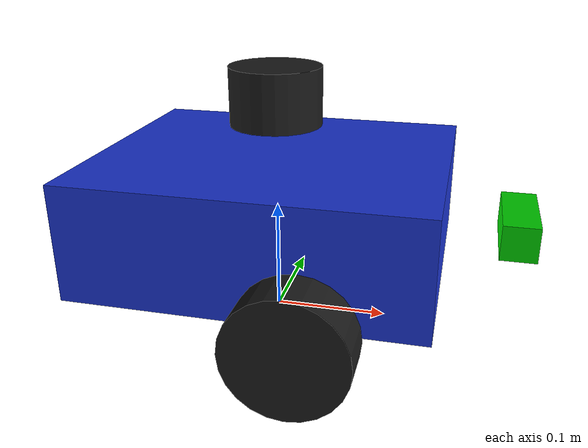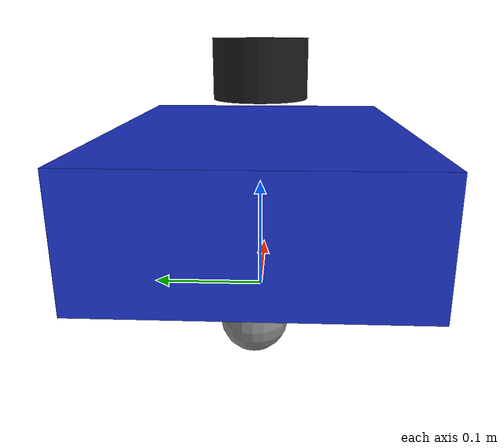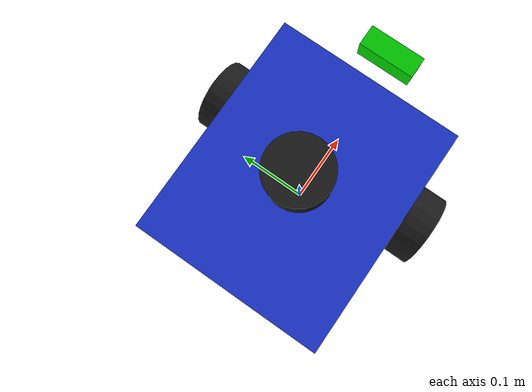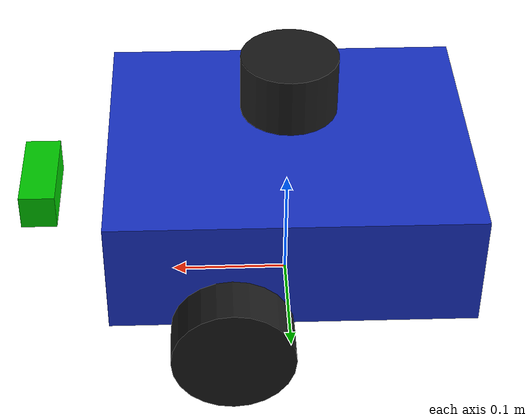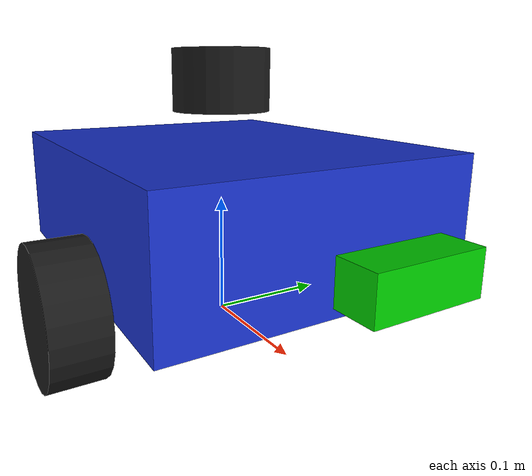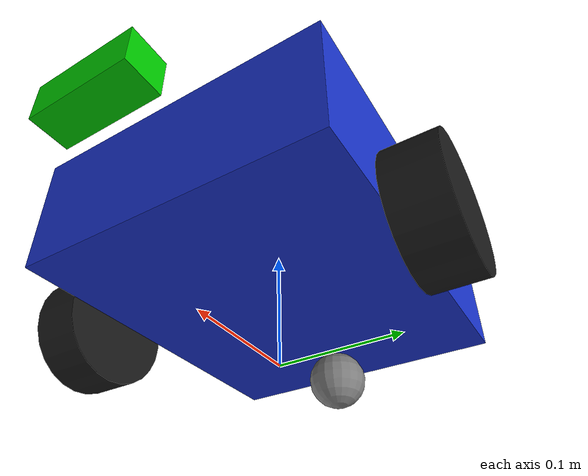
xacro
<?xml version="1.0"?>
<robot name="dif_bot" xmlns:xacro="http://www.ros.org/wiki/xacro">

    <!-- 1. Inclusión de Archivos Secundarios                     -->
    <xacro:include filename="inertial_macros.xacro"/>
    <xacro:include filename="sensors.xacro"/>

    <!-- 2. Propiedades Xacro (Dimensiones, Offsets y Radios)     -->
    <xacro:property name="base_length" value="0.30"/>
    <xacro:property name="base_width" value="0.25"/>
    <xacro:property name="base_height" value="0.10"/>
    <xacro:property name="wheel_radius" value="0.05"/>
    <xacro:property name="wheel_length" value="0.04"/>
    <xacro:property name="wheel_offset_x" value="0.05"/>
    <xacro:property name="wheel_offset_y" value="0.15"/>
    <xacro:property name="wheel_offset_z" value="0.0"/>
    <xacro:property name="caster_radius" value="0.025"/>
    <xacro:property name="caster_offset_x" value="-0.10"/>
    <xacro:property name="caster_offset_z" value="-0.025"/>

    <!-- Materiales de Visualización -->
    <material name="blue">
        <color rgba="0.1 0.2 0.8 1.0"/>
    </material>
    <material name="black">
        <color rgba="0.0 0.0 0.0 1.0"/>
    </material>
    <material name="grey">
        <color rgba="0.5 0.5 0.5 1.0"/>
    </material>

    <!-- 3. Link: base_footprint (Proyección sobre el suelo)     -->
    <link name="base_footprint"/>

    <joint name="base_footprint_joint" type="fixed">
        <parent link="base_footprint"/>
        <child link="base_link"/>
        <origin xyz="0 0 ${wheel_radius}" rpy="0 0 0"/>
    </joint>

    <!-- 4. Link: base_link (Chasis del Robot)                    -->
    <link name="base_link">
        <visual>
            <origin xyz="0 0 ${base_height/2}" rpy="0 0 0"/>
            <geometry>
                <box size="${base_length} ${base_width} ${base_height}"/>
            </geometry>
            <material name="blue"/>
        </visual>
        <collision>
            <origin xyz="0 0 ${base_height/2}" rpy="0 0 0"/>
            <geometry>
                <box size="${base_length} ${base_width} ${base_height}"/>
            </geometry>
        </collision>
        <!-- Inercia del chasis (Masa: 1.0 kg) -->
        <xacro:inertial_box mass="1.0" x="${base_length}" y="${base_width}" z="${base_height}">
            <origin xyz="0 0 ${base_height/2}" rpy="0 0 0"/>
        </xacro:inertial_box>
    </link>

    <!-- 5. Macro para la creación de Ruedas de Tracción          -->
    <xacro:macro name="wheel" params="prefix side_reflect">
        <link name="${prefix}_wheel">
            <visual>
                <origin xyz="0 0 0" rpy="${pi/2} 0 0"/>
                <geometry>
                    <cylinder radius="${wheel_radius}" length="${wheel_length}"/>
                </geometry>
                <material name="black"/>
            </visual>
            <collision>
                <origin xyz="0 0 0" rpy="${pi/2} 0 0"/>
                <geometry>
                    <cylinder radius="${wheel_radius}" length="${wheel_length}"/>
                </geometry>
            </collision>
            <!-- Inercia de la rueda (Masa: 0.1 kg) -->
            <xacro:inertial_cylinder mass="0.1" length="${wheel_length}" radius="${wheel_radius}">
                <origin xyz="0 0 0" rpy="${pi/2} 0 0"/>
            </xacro:inertial_cylinder>
        </link>

        <joint name="${prefix}_wheel_joint" type="continuous">
            <parent link="base_link"/>
            <child link="${prefix}_wheel"/>
            <origin xyz="${wheel_offset_x} ${side_reflect * wheel_offset_y} ${wheel_offset_z}" rpy="0 0 0"/>
            <axis xyz="0 1 0"/>
        </joint>

        <!-- Propiedades de contacto/fricción en Gazebo para la rueda -->
        <gazebo reference="${prefix}_wheel">
            <mu1>1.0</mu1>
            <mu2 value="1.0"/>
            <kp value="1000000.0"/>
            <kd value="100.0"/>
            <material>Gazebo/Black</material>
        </gazebo>
    </xacro:macro>

    <!-- Instanciación de Ruedas usando la Macro -->
    <xacro:wheel prefix="left" side_reflect="1"/>
    <xacro:wheel prefix="right" side_reflect="-1"/>

    <!-- 6. Link y Joint: Caster Wheel (Rueda Loca)              -->
    <link name="caster_wheel">
        <visual>
            <origin xyz="0 0 0" rpy="0 0 0"/>
            <geometry>
                <sphere radius="${caster_radius}"/>
            </geometry>
            <material name="grey"/>
        </visual>
        <collision>
            <origin xyz="0 0 0" rpy="0 0 0"/>
            <geometry>
                <sphere radius="${caster_radius}"/>
            </geometry>
        </collision>
        <!-- Inercia de la rueda loca (Masa: 0.05 kg) -->
        <xacro:inertial_sphere mass="0.05" radius="${caster_radius}">
            <origin xyz="0 0 0" rpy="0 0 0"/>
        </xacro:inertial_sphere>
    </link>

    <joint name="caster_wheel_joint" type="fixed">
        <parent link="base_link"/>
        <child link="caster_wheel"/>
        <origin xyz="${caster_offset_x} 0 ${caster_offset_z}" rpy="0 0 0"/>
    </joint>

    <!-- Reducción de fricción en la rueda loca para permitir el giro suave -->
    <gazebo reference="caster_wheel">
        <mu1>0.001</mu1>
        <mu2 value="0.001"/>
    </gazebo>

    <!-- 7. Plugin de Control Diferencial para Gazebo Classic     -->
    <gazebo>
	  <plugin name="diff_drive" filename="libgazebo_ros_diff_drive.so">
	    <ros>
	      <remapping>cmd_vel:=cmd_vel</remapping>
	      <remapping>odom:=odom</remapping>
	    </ros>

	    <update_rate>30</update_rate>
	    <left_joint>left_wheel_joint</left_joint>
	    <right_joint>right_wheel_joint</right_joint>

	    <wheel_separation>0.3</wheel_separation>
	    <wheel_diameter>0.1</wheel_diameter>

	    <!-- PUBLICACIÓN OBLIGATORIA DE ODOMETRÍA Y TF -->
	    <publish_odom>true</publish_odom>
	    <publish_odom_tf>true</publish_odom_tf>
	    <publish_wheel_tf>false</publish_wheel_tf>

	    <odometry_frame>odom</odometry_frame>
	    <robot_base_frame>base_footprint</robot_base_frame>
	  </plugin>
    </gazebo>

</robot>

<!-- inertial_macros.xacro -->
<robot xmlns:xacro="http://www.ros.org/wiki/xacro">

  <!-- Macro para Inercia de una Esfera -->
  <xacro:macro name="inertial_sphere" params="mass radius *origin">
    <inertial>
      <xacro:insert_block name="origin"/>
      <mass value="${mass}" />
      <inertia ixx="${(2/5) * mass * (radius*radius)}" ixy="0.0" ixz="0.0"
               iyy="${(2/5) * mass * (radius*radius)}" iyz="0.0"
               izz="${(2/5) * mass * (radius*radius)}" />
    </inertial>
  </xacro:macro>

  <!-- Macro para Inercia de una Caja -->
  <xacro:macro name="inertial_box" params="mass x y z *origin">
    <inertial>
      <xacro:insert_block name="origin"/>
      <mass value="${mass}" />
      <inertia ixx="${(1/12) * mass * (y*y + z*z)}" ixy="0.0" ixz="0.0"
               iyy="${(1/12) * mass * (x*x + z*z)}" iyz="0.0"
               izz="${(1/12) * mass * (x*x + y*y)}" />
    </inertial>
  </xacro:macro>

  <!-- Macro para Inercia de un Cilindro -->
  <xacro:macro name="inertial_cylinder" params="mass length radius *origin">
    <inertial>
      <xacro:insert_block name="origin"/>
      <mass value="${mass}" />
      <inertia ixx="${(1/12) * mass * (3*radius*radius + length*length)}" ixy="0.0" ixz="0.0"
               iyy="${(1/12) * mass * (3*radius*radius + length*length)}" iyz="0.0"
               izz="${(1/2) * mass * (radius*radius)}" />
    </inertial>
  </xacro:macro>

</robot>

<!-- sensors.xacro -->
<robot xmlns:xacro="http://www.ros.org/wiki/xacro">

  <!-- 1. SENSOR IMU                                                       -->
  <joint name="imu_joint" type="fixed">
    <parent link="base_link"/>
    <child link="imu_link"/>
    <origin xyz="0.0 0.0 0.08" rpy="0 0 0"/>
  </joint>

  <link name="imu_link">
    <visual>
      <origin xyz="0 0 0" rpy="0 0 0"/>
      <geometry>
        <box size="0.04 0.04 0.02"/>
      </geometry>
      <material name="red">
        <color rgba="1.0 0.0 0.0 1.0"/>
      </material>
    </visual>
    <collision>
      <origin xyz="0 0 0" rpy="0 0 0"/>
      <geometry>
        <box size="0.04 0.04 0.02"/>
      </geometry>
    </collision>
    <inertial>
      <mass value="0.01"/>
      <origin xyz="0 0 0" rpy="0 0 0"/>
      <inertia ixx="0.000001" ixy="0.0" ixz="0.0"
               iyy="0.000001" iyz="0.0"
               izz="0.000001"/>
    </inertial>
  </link>

  <!-- Plugin de Gazebo para IMU -->
  <gazebo reference="imu_link">
    <sensor name="imu_sensor" type="imu">
      <always_on>true</always_on>
      <update_rate>100</update_rate>
      <plugin name="imu_plugin" filename="libgazebo_ros_imu_sensor.so">
        <ros>
          <namespace>/</namespace>
          <remapping>~/out:=/imu/data</remapping>
        </ros>
        <initial_orientation_as_reference>false</initial_orientation_as_reference>
      </plugin>
    </sensor>
  </gazebo>

  <!-- 2. SENSOR LIDAR 2D                                                  -->
  <joint name="laser_joint" type="fixed">
    <parent link="base_link"/>
    <child link="laser_frame"/>
    <origin xyz="0.0 0.0 0.15" rpy="0 0 0"/>
  </joint>

  <link name="laser_frame">
    <visual>
      <origin xyz="0 0 0" rpy="0 0 0"/>
      <geometry>
        <cylinder radius="0.04" length="0.05"/>
      </geometry>
      <material name="black">
        <color rgba="0.1 0.1 0.1 1.0"/>
      </material>
    </visual>
    <collision>
      <origin xyz="0 0 0" rpy="0 0 0"/>
      <geometry>
        <cylinder radius="0.04" length="0.05"/>
      </geometry>
    </collision>
    <inertial>
      <mass value="0.12"/>
      <origin xyz="0 0 0" rpy="0 0 0"/>
      <inertia ixx="0.00007" ixy="0.0" ixz="0.0"
               iyy="0.00007" iyz="0.0"
               izz="0.000096"/>
    </inertial>
  </link>

  <!-- Plugin de Gazebo para LiDAR 2D (Ray Sensor) -->
  <gazebo reference="laser_frame">
    <material>Gazebo/Black</material>
    <sensor name="lidar" type="ray">
      <pose>0 0 0 0 0 0</pose>
      <always_on>true</always_on>
      <visualize>true</visualize>
      <update_rate>10</update_rate>
      <ray>
        <scan>
          <horizontal>
            <samples>360</samples>
            <resolution>1</resolution>
            <min_angle>-3.14159</min_angle>
            <max_angle>3.14159</max_angle>
          </horizontal>
        </scan>
        <range>
          <min>0.15</min>
          <max>12.0</max>
          <resolution>0.01</resolution>
        </range>
      </ray>
      <plugin name="gazebo_ros_head_hokuyo_controller" filename="libgazebo_ros_ray_sensor.so">
        <ros>
          <remapping>~/out:=/scan</remapping>
        </ros>
        <output_type>sensor_msgs/LaserScan</output_type>
        <frame_name>laser_frame</frame_name>
      </plugin>
    </sensor>
  </gazebo>

  <!-- 3. SENSOR CÁMARA                                                    -->
  <joint name="camera_joint" type="fixed">
    <parent link="base_link"/>
    <child link="camera_link"/>
    <origin xyz="0.21 0.0 0.05" rpy="0 0 0"/>
  </joint>

  <link name="camera_link">
    <visual>
      <origin xyz="0 0 0" rpy="0 0 0"/>
      <geometry>
        <box size="0.03 0.08 0.03"/>
      </geometry>
      <material name="green">
        <color rgba="0.0 0.8 0.0 1.0"/>
      </material>
    </visual>
    <collision>
      <origin xyz="0 0 0" rpy="0 0 0"/>
      <geometry>
        <box size="0.03 0.08 0.03"/>
      </geometry>
    </collision>
    <inertial>
      <mass value="0.05"/>
      <origin xyz="0 0 0" rpy="0 0 0"/>
      <inertia ixx="0.000005" ixy="0.0" ixz="0.0"
               iyy="0.000005" iyz="0.0"
               izz="0.000005"/>
    </inertial>
  </link>

  <!-- Frame óptico de la cámara para procesamiento de imágenes -->
  <joint name="camera_optical_joint" type="fixed">
    <parent link="camera_link"/>
    <child link="camera_link_optical"/>
    <origin xyz="0 0 0" rpy="-1.5708 0 -1.5708"/>
  </joint>

  <link name="camera_link_optical"/>

  <!-- Plugin de Gazebo para Cámara 2D -->
  <gazebo reference="camera_link">
    <material>Gazebo/Green</material>
    <sensor name="camera" type="camera">
      <always_on>true</always_on>
      <update_rate>30</update_rate>
      <camera name="head">
        <horizontal_fov>1.089</horizontal_fov>
        <image>
          <width>640</width>
          <height>480</height>
          <format>R8G8B8</format>
        </image>
        <clip>
          <near>0.05</near>
          <far>8.0</far>
        </clip>
      </camera>
      <plugin name="camera_controller" filename="libgazebo_ros_camera.so">
        <ros>
          <namespace>/</namespace>
          <remapping>image_raw:=/camera/image_raw</remapping>
          <remapping>camera_info:=/camera/camera_info</remapping>
        </ros>
        <camera_name>camera</camera_name>
        <frame_name>camera_link_optical</frame_name>
      </plugin>
    </sensor>
  </gazebo>

</robot>
